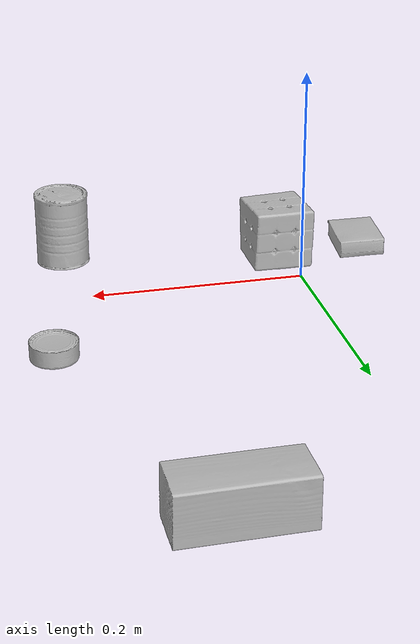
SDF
<sdf version="1.4">
  <world name="default">
    <light name="light1" type="point">
      <pose>0 0 1 0 0 0</pose>
      <diffuse>3 3 3 1</diffuse>
      <specular>3 3 3 1</specular>
    </light>
    <light name="light2" type="point">
      <pose>0 0.5 2 0 0 0</pose>
      <diffuse>1 1 1 1</diffuse>
      <specular>1 1 1 1</specular>
    </light>
    <light name="light3" type="point">
      <pose>0 0.5 2 0 0 0</pose>
      <diffuse>3 3 3 1</diffuse>
      <specular>3 3 3 1</specular>
    </light>
    <scene>
      <ambient>0.7 0.7 0.7</ambient>
    </scene>
    <model name="box1">
      <link name="link_box1">
        <collision name="default">
          <geometry>
            <mesh>
              <uri>model://rubiks_cube/collision_meshes/collision.obj</uri>
              <scale>1.0 1.0 1.0</scale>
            </mesh>
          </geometry>
          <surface>
            <friction>
              <ode>
                <mu>0.5</mu>
                <mu2>0.5</mu2>
              </ode>
            </friction>
          <contact>
        <ode>
            <max_vel>0</max_vel>
            <min_depth>0.0001</min_depth>
            <kp>1e8</kp>
        </ode>
    </contact></surface>
        </collision>
        <visual name="default">
          <geometry>
            <mesh>
              <uri>model://rubiks_cube/visual_meshes/visual.dae</uri>
              <scale>1.0 1.0 1.0</scale>
            </mesh>
          </geometry>
        </visual>
        <inertial>
          <mass>0.19534927606582642</mass>
          <pose>2.6721041649580002e-05 5.256967051536776e-05 -7.264316082000732e-06 -0.05467254413799041 -0.09813991388320625 -0.034457004790174134</pose>
          <inertia>
            <ixx>0.0001079436</ixx>
            <iyy>0.00010744019</iyy>
            <izz>0.000108838074</izz>
            <ixy>0</ixy>
            <ixz>0</ixz>
            <iyz>0</iyz>
          </inertia>
        </inertial>
      </link>
      <pose>0.012026617303490639 -0.04706457629799843 0.028679000213742256 -1.6286776209849544e-06 3.846016488243514e-07 -1.5187755470540658</pose>
    </model>
    <model name="box2">
      <link name="link_box2">
        <collision name="default">
          <geometry>
            <mesh>
              <uri>model://pudding_box/collision_meshes/collision.obj</uri>
              <scale>0.5 0.5 0.5</scale>
            </mesh>
          </geometry>
          <surface>
            <friction>
              <ode>
                <mu>0.5</mu>
                <mu2>0.5</mu2>
              </ode>
            </friction>
          <contact>
        <ode>
            <max_vel>0</max_vel>
            <min_depth>0.0001</min_depth>
            <kp>1e8</kp>
        </ode>
    </contact></surface>
        </collision>
        <visual name="default">
          <geometry>
            <mesh>
              <uri>model://pudding_box/visual_meshes/visual.dae</uri>
              <scale>0.5 0.5 0.5</scale>
            </mesh>
          </geometry>
        </visual>
        <inertial>
          <mass>0.04727919027209282</mass>
          <pose>0.00024474109522998333 0.00040339428232982755 -0.0002594413817860186 0.0052131013240192415 -0.0066037977924420415 0.020079828889419827</pose>
          <inertia>
            <ixx>1.3361672e-05</ixx>
            <iyy>8.9898285e-06</iyy>
            <izz>1.9732002e-05</izz>
            <ixy>0</ixy>
            <ixz>0</ixz>
            <iyz>0</iyz>
          </inertia>
        </inertial>
      </link>
      <pose>-0.07311366498470306 -0.05657379701733589 0.009862907230854034 0.02234855257584397 -0.011391673277464794 3.062125739329291</pose>
    </model>
    <model name="box3">
      <link name="link_box3">
        <collision name="default">
          <geometry>
            <mesh>
              <uri>model://wood_block/collision_meshes/collision.obj</uri>
              <scale>0.5 0.5 0.5</scale>
            </mesh>
          </geometry>
          <surface>
            <friction>
              <ode>
                <mu>0.5</mu>
                <mu2>0.5</mu2>
              </ode>
            </friction>
          <contact>
        <ode>
            <max_vel>0</max_vel>
            <min_depth>0.0001</min_depth>
            <kp>1e8</kp>
        </ode>
    </contact></surface>
        </collision>
        <visual name="default">
          <geometry>
            <mesh>
              <uri>model://wood_block/visual_meshes/visual.dae</uri>
              <scale>0.5 0.5 0.5</scale>
            </mesh>
          </geometry>
        </visual>
        <inertial>
          <mass>0.3041442632675171</mass>
          <pose>-2.9066577553749084e-06 -0.000285404734313488 0.00013204291462898254 -0.05220823380361383 -0.0051926957206686235 -0.0068613778665259926</pose>
          <inertia>
            <ixx>0.00010174775</ixx>
            <iyy>0.0003214212</iyy>
            <izz>0.0003202189</izz>
            <ixy>0</ixy>
            <ixz>0</ixz>
            <iyz>0</iyz>
          </inertia>
        </inertial>
      </link>
      <pose>0.15604986250400543 0.3779367506504059 0.0226292721927166 -0.005208572210198154 0.005718708406784232 0.005169218713242648</pose>
    </model>
    <model name="can1">
      <link name="link_can1">
        <collision name="default">
          <geometry>
            <mesh>
              <uri>model://master_chef_can/collision_meshes/collision.obj</uri>
              <scale>0.5 0.5 0.5</scale>
            </mesh>
          </geometry>
          <surface>
            <friction>
              <ode>
                <mu>0.5</mu>
                <mu2>0.5</mu2>
              </ode>
            </friction>
          <contact>
        <ode>
            <max_vel>0</max_vel>
            <min_depth>0.0001</min_depth>
            <kp>1e8</kp>
        </ode>
    </contact></surface>
        </collision>
        <visual name="default">
          <geometry>
            <mesh>
              <uri>model://master_chef_can/visual_meshes/visual.dae</uri>
              <scale>0.5 0.5 0.5</scale>
            </mesh>
          </geometry>
        </visual>
        <inertial>
          <mass>0.18719419836997986</mass>
          <pose>-4.661963976104744e-05 1.3926856468060578e-07 -5.0798327720258385e-05 -0.0017995099067415357 0.0006479319374111454 -0.6102582770449616</pose>
          <inertia>
            <ixx>0.0001098703</ixx>
            <iyy>0.00010906167</iyy>
            <izz>6.071174e-05</izz>
            <ixy>0</ixy>
            <ixz>0</ixz>
            <iyz>0</iyz>
          </inertia>
        </inertial>
      </link>
      <pose>0.21564123034477234 -0.08823477476835251 0.03530200198292732 -1.5299144888916392e-06 -1.2171268131112693e-06 -0.5360724724204724</pose>
    </model>
    <model name="can2">
      <link name="link_can2">
        <collision name="default">
          <geometry>
            <mesh>
              <uri>model://tuna_fish_can/collision_meshes/collision.obj</uri>
              <scale>0.5 0.5 0.5</scale>
            </mesh>
          </geometry>
          <surface>
            <friction>
              <ode>
                <mu>0.5</mu>
                <mu2>0.5</mu2>
              </ode>
            </friction>
          <contact>
        <ode>
            <max_vel>0</max_vel>
            <min_depth>0.0001</min_depth>
            <kp>1e8</kp>
        </ode>
    </contact></surface>
        </collision>
        <visual name="default">
          <geometry>
            <mesh>
              <uri>model://tuna_fish_can/visual_meshes/visual.dae</uri>
              <scale>0.5 0.5 0.5</scale>
            </mesh>
          </geometry>
        </visual>
        <inertial>
          <mass>0.011327341198921204</mass>
          <pose>-2.0361354472697712e-05 -7.256336175487377e-06 -0.0005269023822620511 -0.001794480782384504 0.00017159763230480823 0.24052991368062646</pose>
          <inertia>
            <ixx>1.5314733e-06</ixx>
            <iyy>1.52509e-06</iyy>
            <izz>2.6205691e-06</izz>
            <ixy>0</ixy>
            <ixz>0</ixz>
            <iyz>0</iyz>
          </inertia>
        </inertial>
      </link>
      <pose>0.24925586581230164 0.11197823286056519 0.00851999968290329 6.859611044549713e-09 -1.4880067147718835e-09 -2.050213194610687</pose>
    </model>
  <physics type="ode">
      <max_contacts>50</max_contacts>
      <ode>
        <solver>
          <type>quick</type>
          <iters>75</iters>
        </solver>
        <constraints>
          <contact_max_correcting_vel>0</contact_max_correcting_vel>
          <contact_surface_layer>0</contact_surface_layer>
        </constraints>
      </ode>
    </physics></world>
</sdf>
